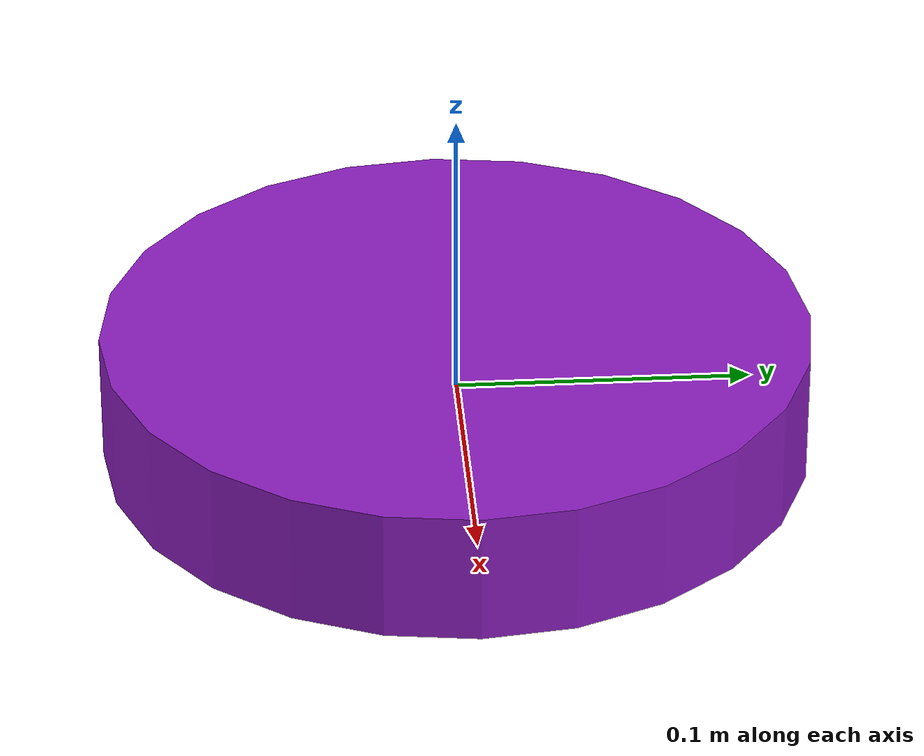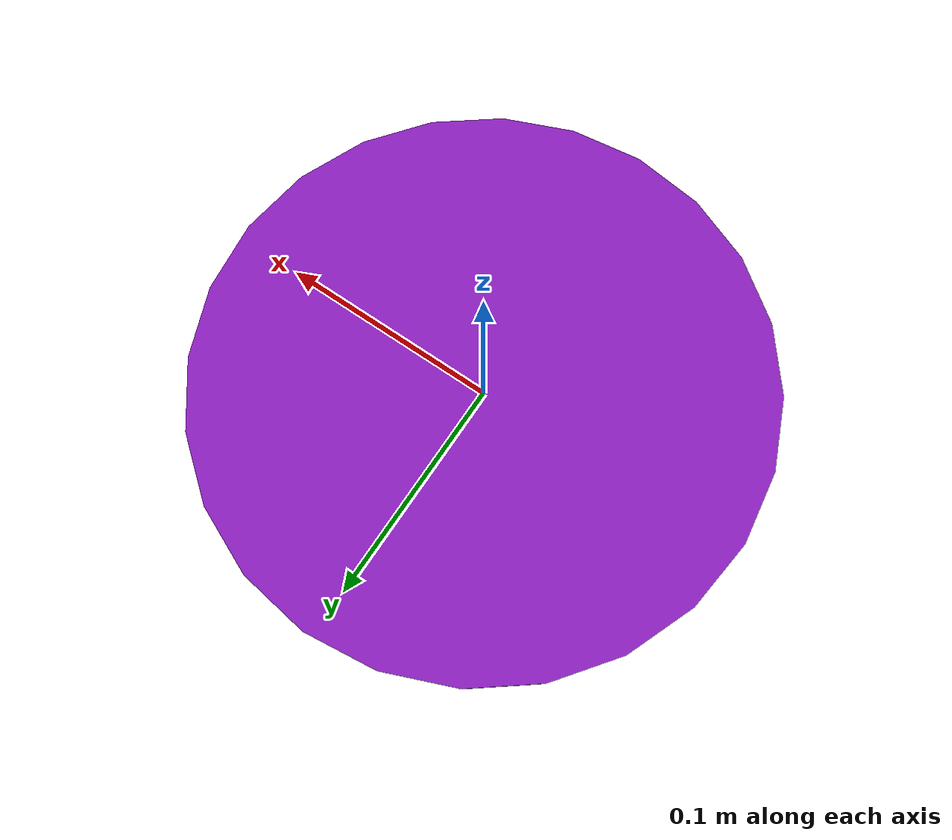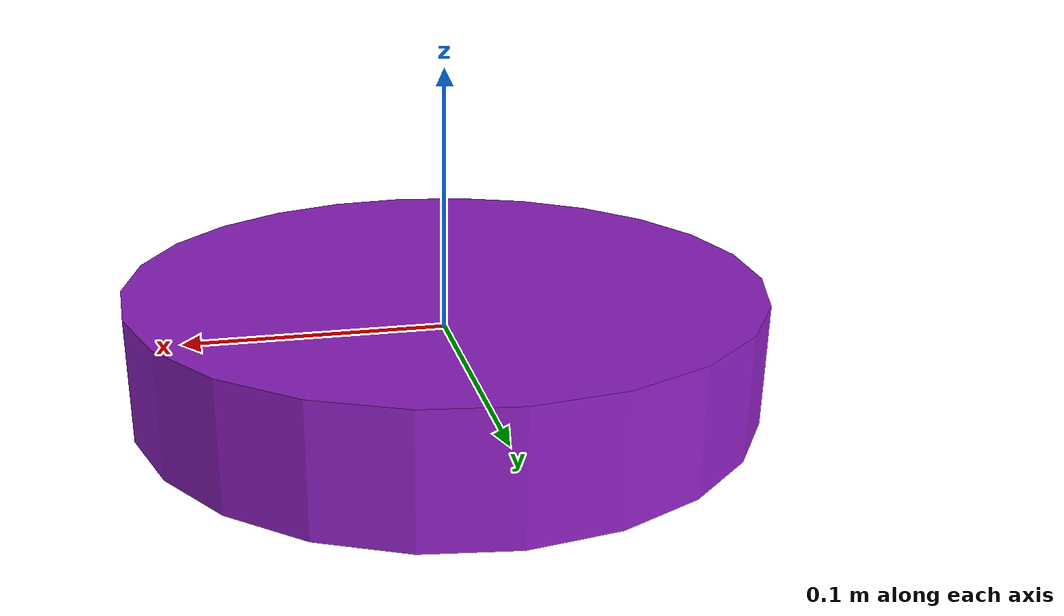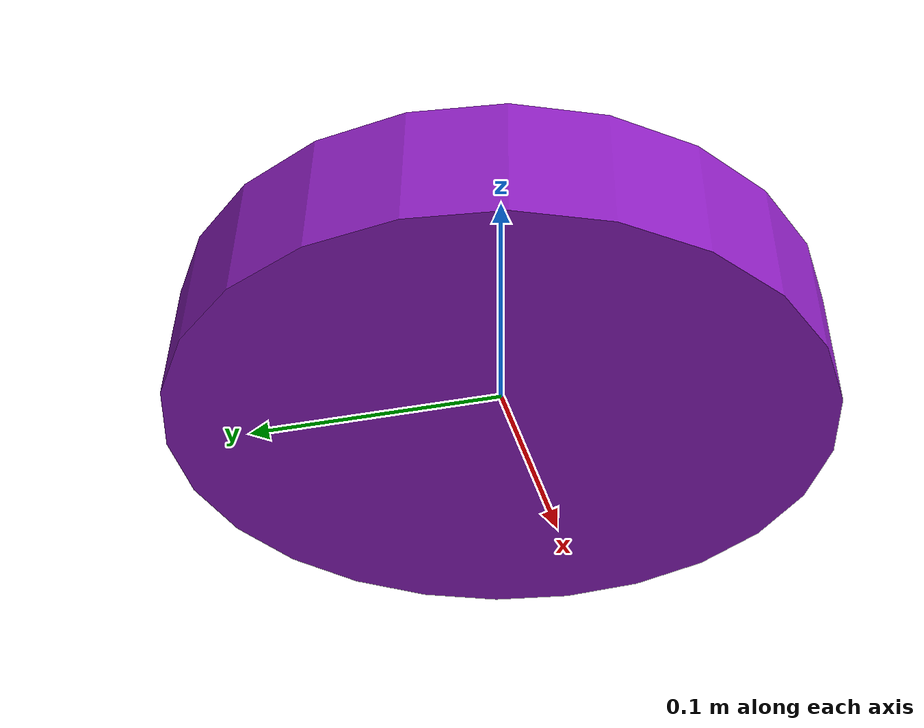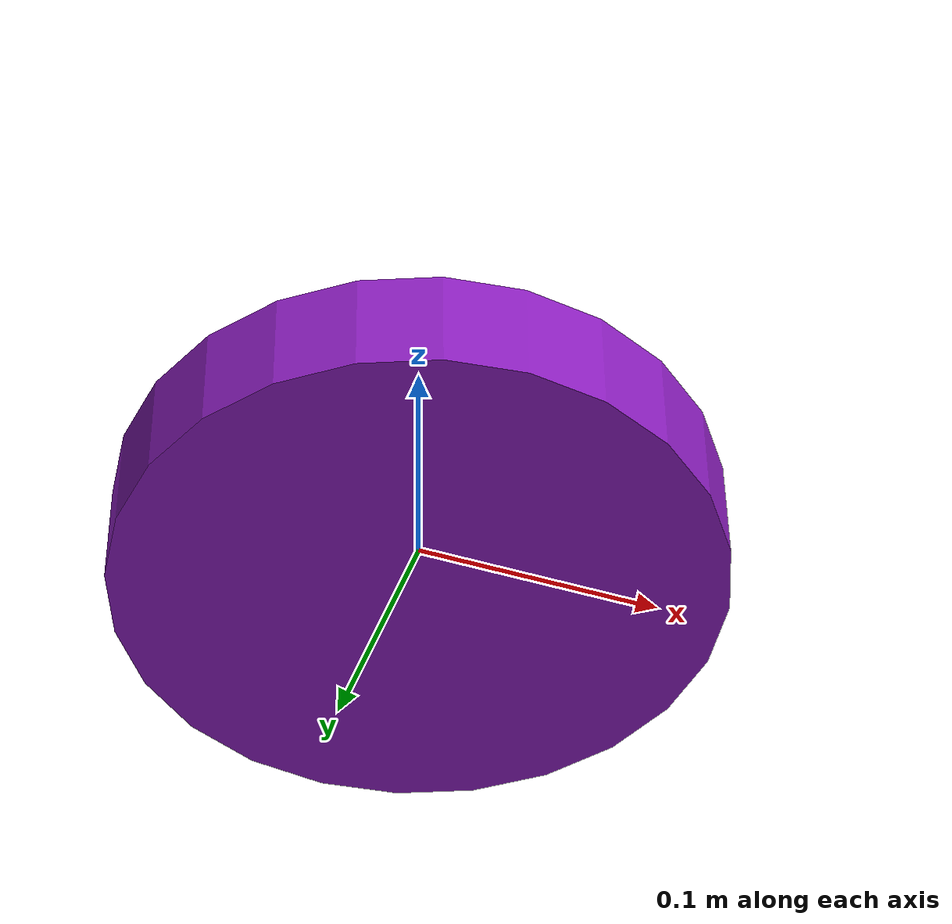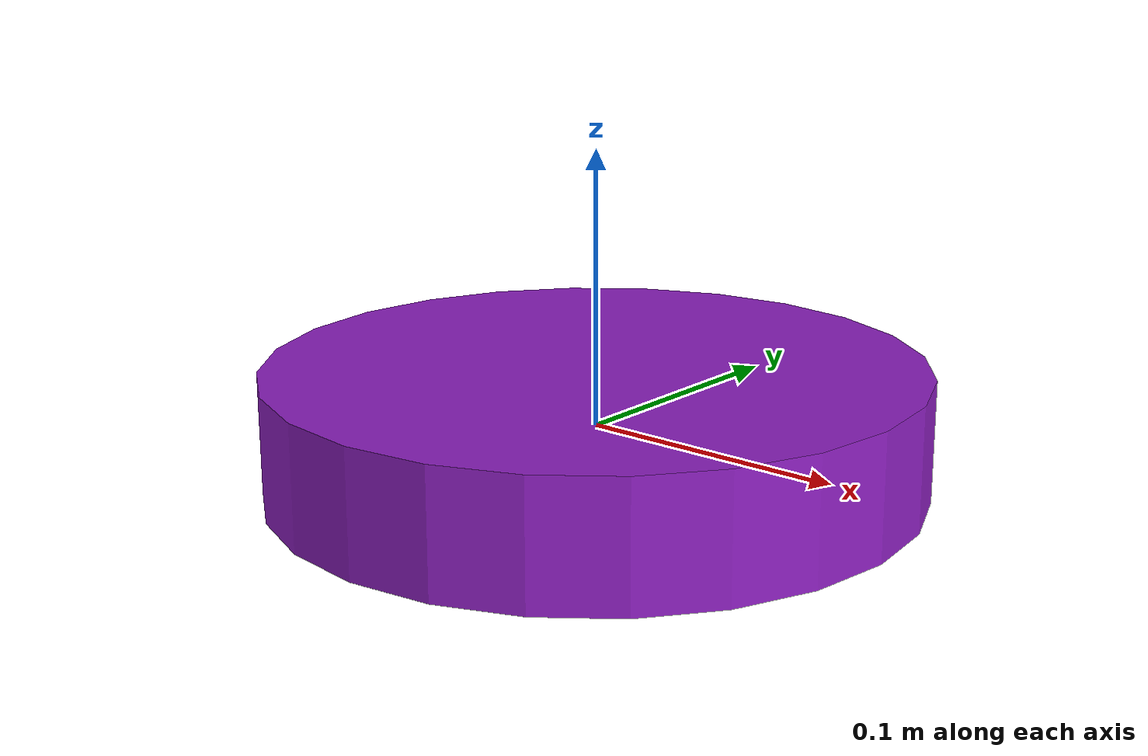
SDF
<?xml version="1.0"?>
<sdf version="1.9">
  <model name="pick_object">
    <static>false</static>
    <self_collide>false</self_collide>
    <allow_auto_disable>false</allow_auto_disable>
    <link name="object_link">
      <inertial>
        <mass>0.030</mass>
        <inertia>
          <ixx>0.0001130625</ixx><iyy>0.0001130625</iyy><izz>0.000216</izz>
          <ixy>0</ixy><ixz>0</ixz><iyz>0</iyz>
        </inertia>
      </inertial>
      <collision name="pick_object_collision">
        <geometry><cylinder><radius>0.120</radius><length>0.045</length></cylinder></geometry>
        <surface>
          <friction>
            <ode><mu>0.85</mu><mu2>0.85</mu2><slip1>0</slip1><slip2>0</slip2></ode>
          </friction>
          <contact>
            <collide_without_contact>false</collide_without_contact>
            <ode><kp>100000</kp><kd>1.0</kd><max_vel>0.01</max_vel><min_depth>0.0001</min_depth></ode>
          </contact>
        </surface>
      </collision>
      <visual name="pick_object_visual">
        <geometry><cylinder><radius>0.120</radius><length>0.045</length></cylinder></geometry>
        <material><diffuse>0.55 0.12 0.75 1</diffuse><ambient>0.2 0.04 0.3 1</ambient></material>
      </visual>
      <sensor name="pick_object_contact_sensor" type="contact">
        <contact>
          <collision>pick_object_collision</collision>
          <topic>/pick_object/contacts</topic>
        </contact>
        <always_on>true</always_on>
        <update_rate>200</update_rate>
      </sensor>
    </link>
    <plugin filename="gz-sim-pose-publisher-system"
            name="gz::sim::systems::PosePublisher">
      <publish_model_pose>true</publish_model_pose>
      <publish_link_pose>true</publish_link_pose>
      <publish_collision_pose>false</publish_collision_pose>
      <publish_visual_pose>false</publish_visual_pose>
      <use_pose_vector_msg>true</use_pose_vector_msg>
      <update_frequency>100</update_frequency>
      <topic>/pick_object/pose</topic>
    </plugin>
  </model>
</sdf>
